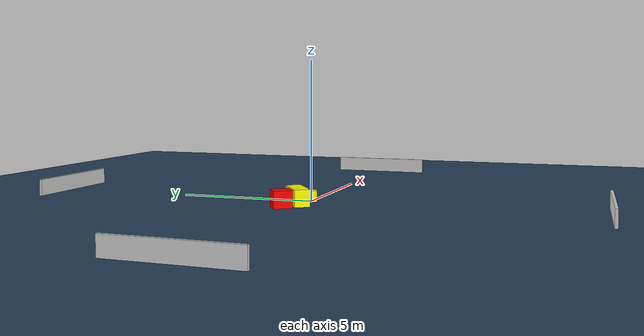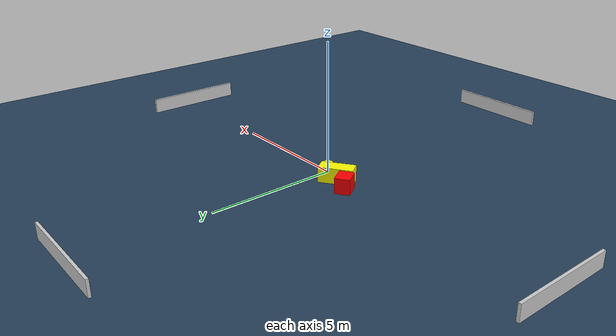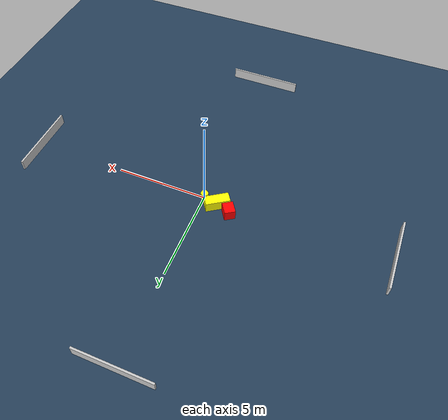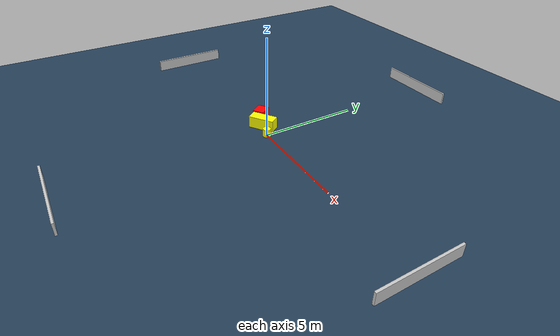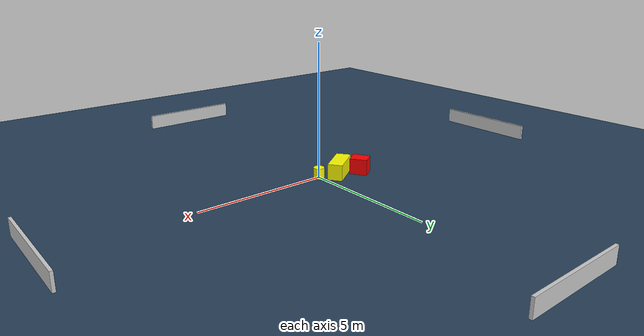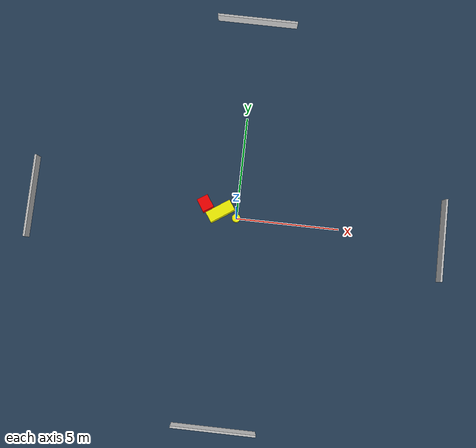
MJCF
<?xml version="1.0" ?>
<mujoco model="generated_environment">
  <option timestep="0.01" integrator="RK4" cone="elliptic"/>
  <default>
    <geom density="1"/>
  </default>
  <asset>
    <texture builtin="gradient" height="3072" name="skybox" rgb1="0.3 0.5 0.7" rgb2="0 0 0" type="skybox" width="512"/>
    <texture builtin="checker" height="300" name="groundplane" rgb1="0.2 0.3 0.4" rgb2="0.1 0.2 0.3" type="2d" width="300"/>
    <material name="groundplane" reflectance="0.2" texrepeat="5 5" texture="groundplane"/>
  </asset>
  <worldbody>
    <light dir="0 0 -1" directional="true" pos="0 0 1.5"/>
    <geom condim="3" friction="0.5 0.005 0.001" material="groundplane" name="floor" pos="0 0 0" size="0 0 0.05" type="plane"/>
    <body name="walls">
      <geom name="wall_1" condim="4" pos="-10.0 0.0 0.3" rgba="0.800000011920929 0.800000011920929 0.800000011920929 1.0" size="0.05 2.0 0.3" type="box"/>
      <geom name="wall_2" condim="4" pos="10.0 0.0 0.3" rgba="0.800000011920929 0.800000011920929 0.800000011920929 1.0" size="0.05 2.0 0.3" type="box"/>
      <geom name="wall_3" condim="4" pos="0.0 -10.0 0.3" rgba="0.800000011920929 0.800000011920929 0.800000011920929 1.0" size="2.0 0.05 0.3" type="box"/>
      <geom name="wall_4" condim="4" pos="0.0 10.0 0.3" rgba="0.800000011920929 0.800000011920929 0.800000011920929 1.0" size="2.0 0.05 0.3" type="box"/>
    </body>
    <body name="robot">
      <joint name="joint_x" type="slide" pos="0 0 0" axis="1 0 0"/>
      <joint name="joint_y" type="slide" pos="0 0 0" axis="0 1 0"/>
      <geom name="robot" type="cylinder" pos="0.0 0.0 0.2" size="0.2 0.2 0.0" mass="5.0" friction="1.0 0.005 0.0001" condim="4" rgba="1.0 1.0 0.0 1.0"/>
    </body>
    <body name="obstacle_1_movable">
      <geom name="obstacle_1_movable" condim="4" pos="-0.7971962128256382 0.23491696729243752 0.3" euler="0 0 214.39095229828087" friction="0.0 0.005 0.001" rgba="1.0 1.0 0.0 1.0" size="0.6531776779598919 0.2735904012401681 0.3" type="box" mass="0.1"/>
      <joint type="free"/>
    </body>
    <body name="obstacle_2_static">
      <geom name="obstacle_2_static" condim="4" pos="-1.5567625582483822 0.5385513901412252 0.3" euler="0 0 123.50823608242902" friction="0.0 0.005 0.001" rgba="1.0 0.0 0.0 1.0" size="0.32885093426484535 0.2880094766973031 0.3" type="box"/>
    </body>
  </worldbody>
  <actuator>
    <motor name="actuator_x" joint="joint_x" gear="1" ctrlrange="-1 1"/>
    <motor name="actuator_y" joint="joint_y" gear="1" ctrlrange="-1 1"/>
  </actuator>
</mujoco>
